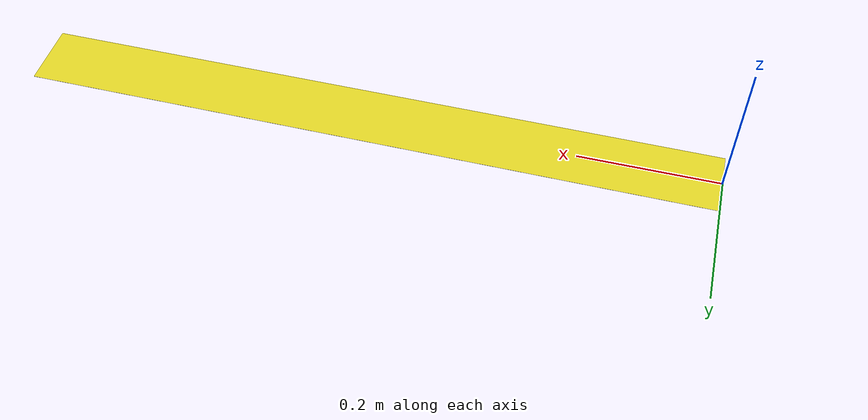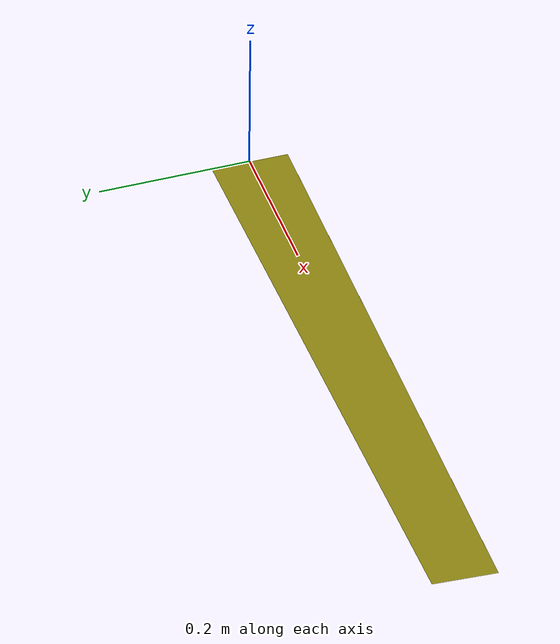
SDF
<?xml version="1.0"?>
<sdf version="1.6">
<model name="yellow line">
  <static>true</static>
  <pose>0.5 0 0 0 0 1.5707963267948966</pose>
    <link name="link_ground">
      <collision name="collision">
        <geometry>
          <plane>
            <normal>0 0 1</normal>
            <size>0.1 1</size>
          </plane>
        </geometry>

        <surface>
          <friction>
            <ode>
              <mu>100</mu>
              <mu2>50</mu2>
            </ode>
          </friction>
        </surface>
      </collision>
      <visual name="visual_ground">
        <cast_shadows>false</cast_shadows>
        <geometry>
          <plane>
            <normal>0 0 1</normal>
            <size>0.1 1</size>
          </plane>
        </geometry>
       <material>
          <script>
            <uri>file://media/materials/scripts/gazebo.material</uri>
            <name>Gazebo/Yellow</name>
          </script>
        </material>
      </visual>
    </link>
  </model>
</sdf>
